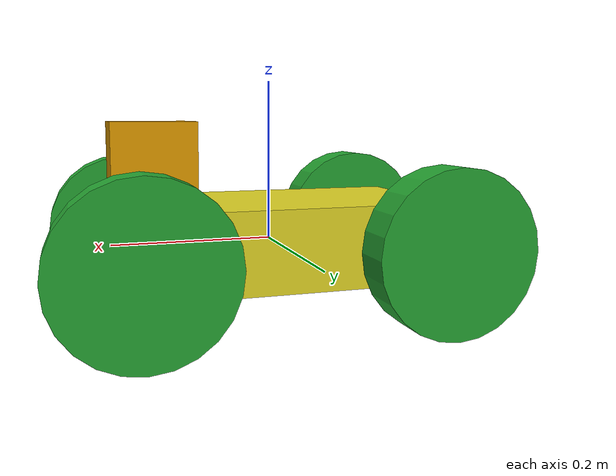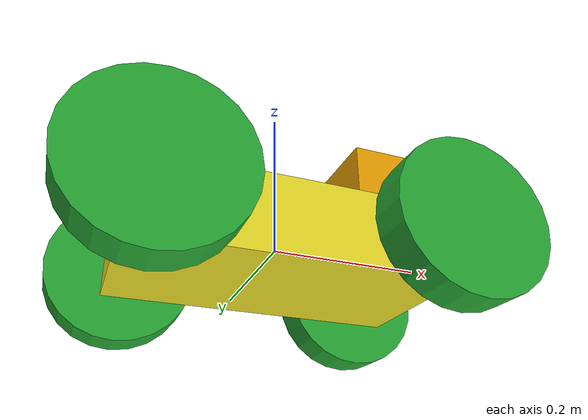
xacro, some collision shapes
<?xml version='1.0'?>

<robot name="my_robot" xmlns:xacro="http://www.ros.org/wiki/xacro">

  <link name="robot_footprint"></link>
  <xacro:include filename="$(find my_robot)/urdf/my_robot.gazebo" />

  <joint name="robot_footprint_joint" type="fixed">
    <origin xyz="0 0 0" rpy="0 0 0" />
    <parent link="robot_footprint"/>
    <child link="chassis" />
  </joint>

  <link name='chassis'>
    <pose>0 0 0.1 0 0 0</pose>

    <inertial>
      <mass value="15.0"/>
      <origin xyz="0.0 0 0" rpy=" 0 0 0"/>
      <inertia
          ixx="0.1" ixy="0" ixz="0"
          iyy="0.1" iyz="0"
          izz="0.1"
      />
    </inertial>

    <collision name='collision'>
      <origin xyz="0 0 0" rpy=" 0 0 0"/>
      <geometry>
        <box size=".4 .2 .1"/>
      </geometry>
    </collision>

    <visual name='chassis_visual'>
      <origin xyz="0 0 0" rpy=" 0 0 0"/>
      <geometry>
        <box size=".4 .2 .1"/>
      </geometry>
    </visual>
  </link>

  <link name='left_front_wheel'>
    <pose>0 0 0 0 0 0</pose>

    <inertial>
      <mass value="5.0"/>
      <origin xyz="0.0 0 0" rpy=" 0 1.5707 1.5707"/>
      <inertia
          ixx="0.1" ixy="0" ixz="0"
          iyy="0.1" iyz="0"
          izz="0.1"
      />
    </inertial>

    <collision name='left_front_wheel_collision'>
      <origin xyz="0 0 0" rpy=" 0 1.5707 1.5707"/>
      <geometry>
        <cylinder radius="0.1" length="0.05"/>
      </geometry>
    </collision>

    <visual name='left_front_wheel_visual'>
      <origin xyz="0 0 0" rpy=" 0 1.5707 1.5707"/>
      <geometry>
        <cylinder radius="0.1" length="0.05"/>
      </geometry>
    </visual>
  </link>

  <link name='right_front_wheel'>
    <pose>0 0 0 0 0 0</pose>

    <inertial>
      <mass value="5.0"/>
      <origin xyz="0.0 0 0" rpy=" 0 1.5707 1.5707"/>
      <inertia
          ixx="0.1" ixy="0" ixz="0"
          iyy="0.1" iyz="0"
          izz="0.1"
      />
    </inertial>

    <collision name='right_front_wheel_collision'>
      <origin xyz="0 0 0" rpy=" 0 1.5707 1.5707"/>
      <geometry>
        <cylinder radius="0.1" length="0.05"/>
      </geometry>
    </collision>

    <visual name='right_front_wheel_visual'>
      <origin xyz="0 0 0" rpy=" 0 1.5707 1.5707"/>
      <geometry>
        <cylinder radius="0.1" length="0.05"/>
      </geometry>
    </visual>
  </link>

  <link name='left_rear_wheel'>
    <pose>0 0 0 0 0 0</pose>

    <inertial>
      <mass value="5.0"/>
      <origin xyz="0.0 0 0" rpy=" 0 1.5707 1.5707"/>
      <inertia
          ixx="0.1" ixy="0" ixz="0"
          iyy="0.1" iyz="0"
          izz="0.1"
      />
    </inertial>

    <collision name='left_rear_wheel_collision'>
      <origin xyz="0 0 0" rpy=" 0 1.5707 1.5707"/>
      <geometry>
        <cylinder radius="0.1" length="0.05"/>
      </geometry>
    </collision>

    <visual name='left_rear_wheel_visual'>
      <origin xyz="0 0 0" rpy=" 0 1.5707 1.5707"/>
      <geometry>
        <cylinder radius="0.1" length="0.05"/>
      </geometry>
    </visual>
  </link>

  <link name='right_rear_wheel'>
    <pose>0 0 0 0 0 0</pose>

    <inertial>
      <mass value="5.0"/>
      <origin xyz="0.0 0 0" rpy=" 0 1.5707 1.5707"/>
      <inertia
          ixx="0.1" ixy="0" ixz="0"
          iyy="0.1" iyz="0"
          izz="0.1"
      />
    </inertial>

    <collision name='right_rear_wheel_collision'>
      <origin xyz="0 0 0" rpy=" 0 1.5707 1.5707"/>
      <geometry>
        <cylinder radius="0.1" length="0.05"/>
      </geometry>
    </collision>

    <visual name='right_rear_wheel_visual'>
      <origin xyz="0 0 0" rpy=" 0 1.5707 1.5707"/>
      <geometry>
        <cylinder radius="0.1" length="0.05"/>
      </geometry>
    </visual>
  </link>

  <joint type="continuous" name="left_front_wheel_hinge">
    <origin xyz="0.175 0.15 0" rpy="0 0 0"/>
    <child link="left_front_wheel"/>
    <parent link="chassis"/>
    <axis xyz="0 1 0" rpy="0 0 0"/>
    <limit effort="10000" velocity="1000"/>
    <dynamics damping="1.0" friction="1.0"/>
  </joint>

  <joint type="continuous" name="right_front_wheel_hinge">
    <origin xyz="0.175 -0.15 0" rpy="0 0 0"/>
    <child link="right_front_wheel"/>
    <parent link="chassis"/>
    <axis xyz="0 1 0" rpy="0 0 0"/>
    <limit effort="10000" velocity="1000"/>
    <dynamics damping="1.0" friction="1.0"/>
  </joint>

  <joint type="continuous" name="left_rear_wheel_hinge">
    <origin xyz="-0.175 0.15 0" rpy="0 0 0"/>
    <child link="left_rear_wheel"/>
    <parent link="chassis"/>
    <axis xyz="0 1 0" rpy="0 0 0"/>
    <limit effort="10000" velocity="1000"/>
    <dynamics damping="1.0" friction="1.0"/>
  </joint>

  <joint type="continuous" name="right_rear_wheel_hinge">
    <origin xyz="-0.175 -0.15 0" rpy="0 0 0"/>
    <child link="right_rear_wheel"/>
    <parent link="chassis"/>
    <axis xyz="0 1 0" rpy="0 0 0"/>
    <limit effort="10000" velocity="1000"/>
    <dynamics damping="1.0" friction="1.0"/>
  </joint>

  <link name='camera'>
    <pose>0 0 0 0 0 0</pose>

    <inertial>
      <mass value="0.1"/>
      <origin xyz="0.0 0 0" rpy="0.0 0 0"/>
      <inertia
          ixx="1e-6" ixy="0" ixz="0"
          iyy="1e-6" iyz="0"
          izz="1e-6"
      />
    </inertial>

    <collision name='collision'>
      <origin xyz="0 0 0" rpy=" 0 0 0"/>
      <geometry>
        <box size="0.05 0.05 0.05"/>
      </geometry>
    </collision>

    <visual name='camera_visual'>
      <origin xyz="0 0 0" rpy="0 0 0"/>
      <geometry>
        <box size="0.05 0.05 0.05"/>
      </geometry>
    </visual>
  </link>

  <joint type="fixed" name="camera_joint">
    <origin xyz="0.2 0 0" rpy="0 0 0"/>
    <child link="camera"/>
    <parent link="chassis"/>
    <axis xyz="0 1 0" rpy="0 0 0"/>
    <limit effort="10000" velocity="1000"/>
    <dynamics damping="1.0" friction="1.0"/>
  </joint>

  <joint name="camera_optical_joint" type="fixed">
    <origin xyz="0 0 0" rpy="-1.5707 0 -1.5707"/>
    <parent link="camera"/>
    <child link="camera_link_optical"/>
  </joint>

  <link name="camera_link_optical">
  </link>

  <link name='hokuyo'>
    <pose>0 0 0 0 0 0</pose>

    <inertial>
      <mass value="1e-5"/>
      <origin xyz="0.0 0 0" rpy="0.0 0 0"/>
      <inertia
          ixx="1e-6" ixy="0" ixz="0"
          iyy="1e-6" iyz="0"
          izz="1e-6"
      />
    </inertial>

    <collision name='collision'>
      <origin xyz="0 0 0" rpy=" 0 0 0"/>
      <geometry>
        <box size="0.1 0.1 0.1"/>
      </geometry>
    </collision>

    <visual name='hokuyo_visual'>
      <origin xyz="0 0 0" rpy="0 0 0"/>
      <geometry>
        <mesh filename="package://my_robot/meshes/hokuyo.dae"/>
      </geometry>
    </visual>
  </link>

  <joint type="fixed" name="hokuyo_joint">
    <origin xyz="0.15 0.0 0.1" rpy="0 0 0"/>
    <child link="hokuyo"/>
    <parent link="chassis"/>
    <axis xyz="0 1 0" rpy="0 0 0"/>
    <limit effort="10000" velocity="1000"/>
    <dynamics damping="1.0" friction="1.0"/>
  </joint>

  <gazebo reference="left_rear_wheel">
    <material>Gazebo/Green</material>
  </gazebo>

  <gazebo reference="right_rear_wheel">
    <material>Gazebo/Green</material>
  </gazebo>

  <gazebo reference="left_front_wheel">
    <material>Gazebo/Green</material>
  </gazebo>

  <gazebo reference="right_front_wheel">
    <material>Gazebo/Green</material>
  </gazebo>

  <gazebo reference="camera">
    <material>Gazebo/Red</material>
  </gazebo>

  <gazebo reference="chassis">
    <material>Gazebo/Yellow</material>
  </gazebo>

</robot>
